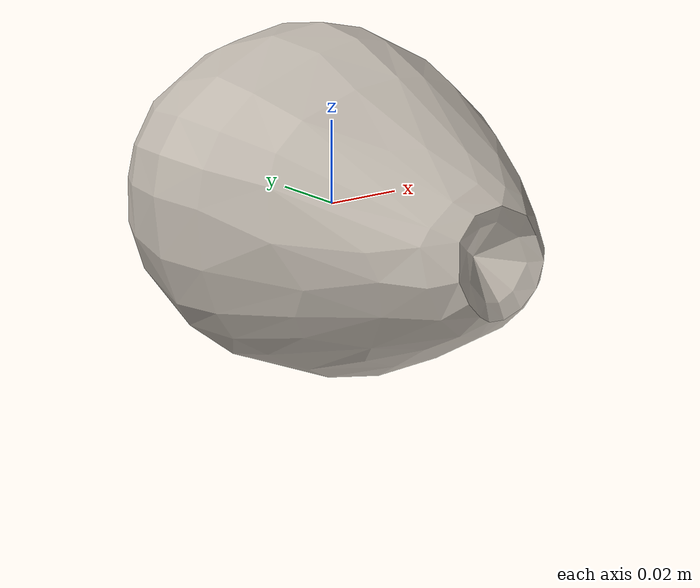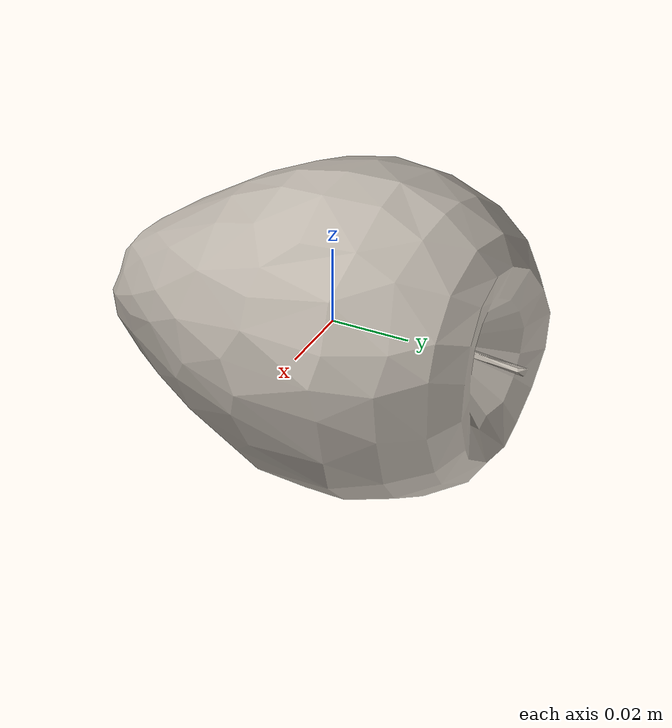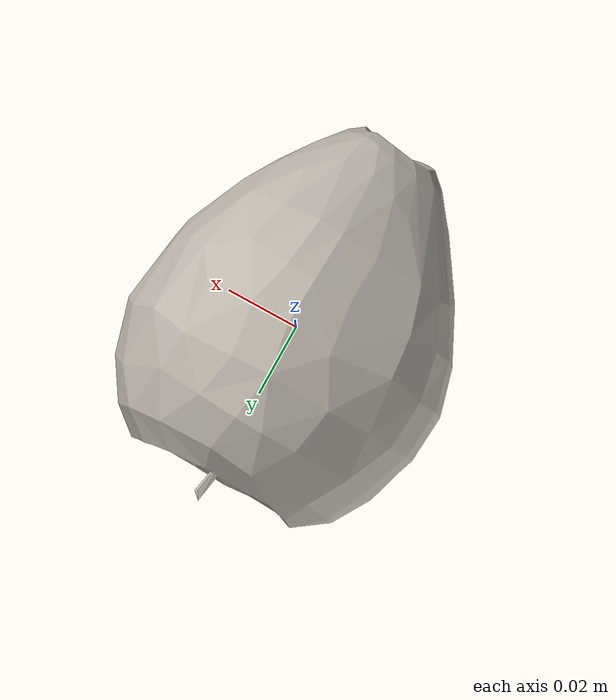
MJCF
<mujoco model="Apple_26">
  <compiler autolimits="true" boundmass="0.01" angle="radian"/>
  <default>
    <default class="/">
      <default class="__VISUAL_MJT__">
        <geom contype="0" conaffinity="0" group="0"/>
      </default>
      <default class="__STRUCTURAL_MJT__">
        <geom contype="8" conaffinity="15" group="4" friction="0.90000000000000002 0.90000000000000002 0.001" solref="0.025000000000000001 1" solimp="0.998 0.998 0.001"/>
      </default>
      <default class="__DYNAMIC_MJT__">
        <geom contype="1" conaffinity="15" group="4" friction="0.90000000000000002 0.90000000000000002 0.001" solref="0.025000000000000001 1" solimp="0.998 0.998 0.001"/>
      </default>
    </default>
  </default>
  <asset>
    <texture name="Apple2_Mat2" type="2d" file="Apple2_AlbedoTransparency2.png"/>
    <material name="material_Apple2_Mat2" class="/" texture="Apple2_Mat2" specular="0.5" shininess="0.5" rgba="1 1 1 1"/>
    <mesh name="Apple_26_apple_b11" class="/" file="Apple_26_apple_b11/Apple_26_apple_b11.obj" scale="1 1 1"/>
  </asset>
  <worldbody>
    <body name="Apple_26">
      <joint name="Apple_26_free" class="/" type="free" pos="0 0 0" axis="0 0 1" stiffness="0" range="0 0" armature="0" damping="0.10000000000000001" frictionloss="0"/>
      <body name="Apple_26_apple_b11" pos="-0.00038000000000000002 0.0011199999999999999 -0.00084000000000000003" quat="1 0 0 0">
        <geom name="Apple_26_apple_b11" class="__VISUAL_MJT__" type="mesh" material="material_Apple2_Mat2" shellinertia="false" mesh="Apple_26_apple_b11"/>
        <geom name="Apple_26_PrimitiveCollider_0" class="__DYNAMIC_MJT__" type="capsule" size="0.043169226497411728 0.012955386191606522" rgba="0 1 0 1" pos="-0.00037796050310134888 -0.0011238306760787964 0.00084325298666954041" quat="0.70710678118654757 0.70710678118654746 0 0"/>
      </body>
    </body>
  </worldbody>
</mujoco>
